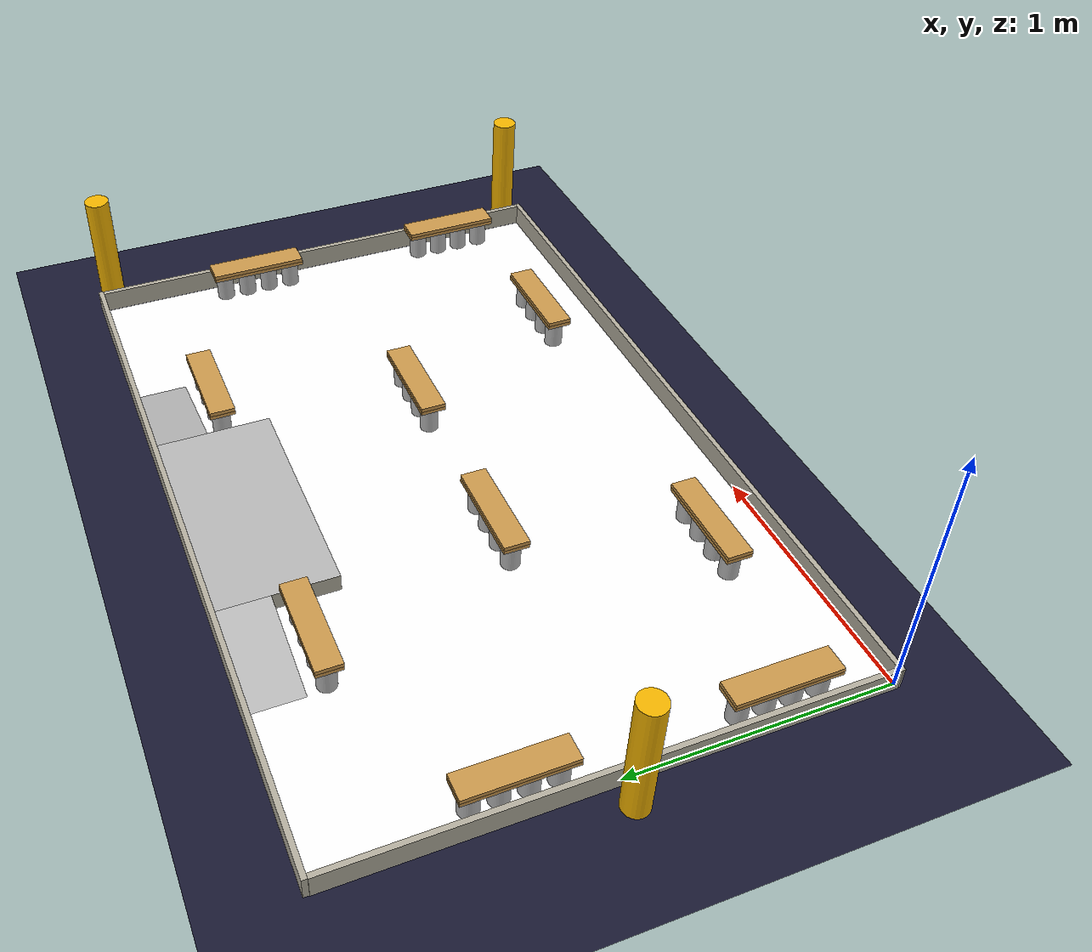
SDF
<?xml version="1.0" ?>
<sdf version="1.6">

  <world name="eurobot_2025">
    <physics name="default_physics" type="ode">
      <max_step_size>0.01</max_step_size>
      <real_time_update_rate>10</real_time_update_rate>
      <real_time_factor>1.0</real_time_factor>
    </physics>

    <scene>
      <ambient>0.4 0.4 0.4 1</ambient>
      <shadows>false</shadows>
    </scene>
    <light type="directional" name="light1">
      <pose>1.5 1 50 0 0 0</pose>
      <diffuse>0.5 0.5 0.5 1</diffuse>
      <specular>1 1 1 0</specular>
      <direction>1 0 0.5</direction>
    </light>
    <light type="directional" name="light2">
      <pose>1.5 1 50 0 0 0</pose>
      <diffuse>0.5 0.5 0.5 1</diffuse>
      <specular>1 1 1 0</specular>
      <direction>1 0 -0.5</direction>
    </light>

    <model name="ground_plane">
      <static>true</static>
      <link name="ground_link">
        <collision name="collision1">
          <geometry>
            <plane>
              <normal>0 0 1</normal>
            </plane>
          </geometry>
        </collision>
        <visual name="visual1">
          <geometry>
            <plane>
              <normal>0 0 1</normal>
              <size>100 100</size>
            </plane>
          </geometry>
          <material>
            <ambient>0.1 0.1 0.1 0</ambient>
            <diffuse>0.1 0.1 0.2 0</diffuse>
            <specular>0 0 0 0</specular>
            <emissive>0 0 0 0</emissive>
          </material>
        </visual>
      </link>
    </model>

    <!--Playground-->
    <include>
      <name>playground</name>
      <uri>model://eurobot_playground_25</uri>
      <pose>1.5 1.0 -0.001 0 0 0</pose>
    </include>

    <!--Stage-->
    <include>
      <name>stage</name>
      <uri>model://eurobot_25/stage</uri>
      <pose>1.5 1.775 0.035 0 0 0</pose>
    </include>

    <!--Ramp Yellow-->
    <include>
      <name>ramp_yellow</name>
      <uri>model://eurobot_25/ramp_yellow</uri>
      <pose>0.85 1.9 0.035 0 0 0</pose>
    </include>

    <!--Ramp Blue-->
    <include>
      <name>ramp_blue</name>
      <uri>model://eurobot_25/ramp_blue</uri>
      <pose>2.15 1.9 0.035 0 0 0</pose>
    </include>

    <!-- Cans front left-->
    <include>
      <name>can11</name>
      <uri>model://eurobot_25/cans_yrg</uri>
      <pose>0.625 0.25 0.055 0 0 0</pose>
    </include>
    <include>
      <name>can12</name>
      <uri>model://eurobot_25/cans_rbb</uri>
      <pose>0.725 0.25 0.055 0 0 0</pose>
    </include>
    <include>
      <name>can13</name>
      <uri>model://eurobot_25/cans_yrg</uri>
      <pose>0.825 0.25 0.055 0 0 0</pose>
    </include>
    <include>
      <name>can14</name>
      <uri>model://eurobot_25/cans_rbb</uri>
      <pose>0.925 0.25 0.055 0 0 0</pose>
    </include>
    <!-- planks front left-->
    <include>
      <name>plank_11</name>
      <uri>model://eurobot_25/plank</uri>
      <pose>0.775 0.25 0.118 0 0 0</pose>
    </include>
    <include>
      <name>plank_12</name>
      <uri>model://eurobot_25/plank</uri>
      <pose>0.775 0.25 0.134 0 0 0</pose>
    </include>

    <!-- Cans left front -->
    <include>
      <name>can21</name>
      <uri>model://eurobot_25/cans_yrg</uri>
      <pose>0.075 0.25 0.055 0 0 0</pose>
    </include>
    <include>
      <name>can22</name>
      <uri>model://eurobot_25/cans_rbb</uri>
      <pose>0.075 0.35 0.055 0 0 0</pose>
    </include>
    <include>
      <name>can23</name>
      <uri>model://eurobot_25/cans_yrg</uri>
      <pose>0.075 0.45 0.055 0 0 0</pose>
    </include>
    <include>
      <name>can24</name>
      <uri>model://eurobot_25/cans_rbb</uri>
      <pose>0.075 0.55 0.055 0 0 0</pose>
    </include>
    <!-- planks left front -->
    <include>
      <name>plank_21</name>
      <uri>model://eurobot_25/plank</uri>
      <pose>0.075 0.4 0.118 0 0 1.571</pose>
    </include>
    <include>
      <name>plank_22</name>
      <uri>model://eurobot_25/plank</uri>
      <pose>0.075 0.4 0.134 0 0 1.571</pose>
    </include>

    <!-- Cans left middle -->
    <include>
      <name>can31</name>
      <uri>model://eurobot_25/cans_yrg</uri>
      <pose>0.075 1.175 0.055 0 0 0</pose>
    </include>
    <include>
      <name>can32</name>
      <uri>model://eurobot_25/cans_rbb</uri>
      <pose>0.075 1.275 0.055 0 0 0</pose>
    </include>
    <include>
      <name>can33</name>
      <uri>model://eurobot_25/cans_yrg</uri>
      <pose>0.075 1.375 0.055 0 0 0</pose>
    </include>
    <include>
      <name>can34</name>
      <uri>model://eurobot_25/cans_rbb</uri>
      <pose>0.075 1.475 0.055 0 0 0</pose>
    </include>
    <!-- planks left middle -->
    <include>
      <name>plank_31</name>
      <uri>model://eurobot_25/plank</uri>
      <pose>0.075 1.325 0.118 0 0 1.571</pose>
    </include>
    <include>
      <name>plank_32</name>
      <uri>model://eurobot_25/plank</uri>
      <pose>0.075 1.325 0.134 0 0 1.571</pose>
    </include>

    <!-- Cans center left -->
    <include>
      <name>can41</name>
      <uri>model://eurobot_25/cans_yrg</uri>
      <pose>0.95 0.95 0.055 0 0 0</pose>
    </include>
    <include>
      <name>can42</name>
      <uri>model://eurobot_25/cans_rbb</uri>
      <pose>1.05 0.95 0.055 0 0 0</pose>
    </include>
    <include>
      <name>can43</name>
      <uri>model://eurobot_25/cans_yrg</uri>
      <pose>1.15 0.95 0.055 0 0 0</pose>
    </include>
    <include>
      <name>can44</name>
      <uri>model://eurobot_25/cans_rbb</uri>
      <pose>1.25 0.95 0.055 0 0 0</pose>
    </include>
    <!-- planks center left -->
    <include>
      <name>plank_41</name>
      <uri>model://eurobot_25/plank</uri>
      <pose>1.1 0.95 0.118 0 0 0</pose>
    </include>
    <include>
      <name>plank_42</name>
      <uri>model://eurobot_25/plank</uri>
      <pose>1.1 0.95 0.134 0 0 0</pose>
    </include>

    <!-- Cans backstage left -->
    <include>
      <name>can51</name>
      <uri>model://eurobot_25/cans_rbb</uri>
      <pose>0.675 1.725 0.055 0 0 0</pose>
    </include>
    <include>
      <name>can52</name>
      <uri>model://eurobot_25/cans_yrg</uri>
      <pose>0.775 1.725 0.055 0 0 0</pose>
    </include>
    <include>
      <name>can53</name>
      <uri>model://eurobot_25/cans_rbb</uri>
      <pose>0.875 1.725 0.055 0 0 0</pose>
    </include>
    <include>
      <name>can54</name>
      <uri>model://eurobot_25/cans_yrg</uri>
      <pose>0.975 1.725 0.055 0 0 0</pose>
    </include>
    <!-- planks backstage left -->
    <include>
      <name>plank_51</name>
      <uri>model://eurobot_25/plank</uri>
      <pose>0.825 1.725 0.118 0 0 0</pose>
    </include>
    <include>
      <name>plank_52</name>
      <uri>model://eurobot_25/plank</uri>
      <pose>0.825 1.725 0.134 0 0 0</pose>
    </include>

    <!-- Cans front right-->
    <include>
      <name>can15</name>
      <uri>model://eurobot_25/cans_rbb</uri>
      <pose>2.075 0.25 0.055 0 0 0</pose>
    </include>
    <include>
      <name>can16</name>
      <uri>model://eurobot_25/cans_yrg</uri>
      <pose>2.175 0.25 0.055 0 0 0</pose>
    </include>
    <include>
      <name>can17</name>
      <uri>model://eurobot_25/cans_yrg</uri>
      <pose>2.275 0.25 0.055 0 0 0</pose>
    </include>
    <include>
      <name>can18</name>
      <uri>model://eurobot_25/cans_rbb</uri>
      <pose>2.375 0.25 0.055 0 0 0</pose>
    </include>
    <!-- planks front right-->
    <include>
      <name>plank_13</name>
      <uri>model://eurobot_25/plank</uri>
      <pose>2.225 0.25 0.118 0 0 0</pose>
    </include>
    <include>
      <name>plank_14</name>
      <uri>model://eurobot_25/plank</uri>
      <pose>2.225 0.25 0.134 0 0 0</pose>
    </include>

    <!-- Cans right front -->
    <include>
      <name>can25</name>
      <uri>model://eurobot_25/cans_yrg</uri>
      <pose>2.925 0.25 0.055 0 0 0</pose>
    </include>
    <include>
      <name>can26</name>
      <uri>model://eurobot_25/cans_yrg</uri>
      <pose>2.925 0.35 0.055 0 0 0</pose>
    </include>
    <include>
      <name>can27</name>
      <uri>model://eurobot_25/cans_rbb</uri>
      <pose>2.925 0.45 0.055 0 0 0</pose>
    </include>
    <include>
      <name>can28</name>
      <uri>model://eurobot_25/cans_rbb</uri>
      <pose>2.925 0.55 0.055 0 0 0</pose>
    </include>
    <!-- planks right front -->
    <include>
      <name>plank_23</name>
      <uri>model://eurobot_25/plank</uri>
      <pose>2.925 0.4 0.118 0 0 1.571</pose>
    </include>
    <include>
      <name>plank_24</name>
      <uri>model://eurobot_25/plank</uri>
      <pose>2.925 0.4 0.134 0 0 1.571</pose>
    </include>

    <!-- Cans right middle -->
    <include>
      <name>can35</name>
      <uri>model://eurobot_25/cans_rbb</uri>
      <pose>2.925 1.175 0.055 0 0 0</pose>
    </include>
    <include>
      <name>can36</name>
      <uri>model://eurobot_25/cans_yrg</uri>
      <pose>2.925 1.275 0.055 0 0 0</pose>
    </include>
    <include>
      <name>can37</name>
      <uri>model://eurobot_25/cans_rbb</uri>
      <pose>2.925 1.375 0.055 0 0 0</pose>
    </include>
    <include>
      <name>can38</name>
      <uri>model://eurobot_25/cans_yrg</uri>
      <pose>2.925 1.475 0.055 0 0 0</pose>
    </include>
    <!-- planks right middle -->
    <include>
      <name>plank_33</name>
      <uri>model://eurobot_25/plank</uri>
      <pose>2.925 1.325 0.118 0 0 1.571</pose>
    </include>
    <include>
      <name>plank_34</name>
      <uri>model://eurobot_25/plank</uri>
      <pose>2.925 1.325 0.134 0 0 1.571</pose>
    </include>

    <!-- Cans center right -->
    <include>
      <name>can45</name>
      <uri>model://eurobot_25/cans_yrg</uri>
      <pose>1.75 0.95 0.055 0 0 0</pose>
    </include>
    <include>
      <name>can46</name>
      <uri>model://eurobot_25/cans_rbb</uri>
      <pose>1.85 0.95 0.055 0 0 0</pose>
    </include>
    <include>
      <name>can47</name>
      <uri>model://eurobot_25/cans_rbb</uri>
      <pose>1.95 0.95 0.055 0 0 0</pose>
    </include>
    <include>
      <name>can48</name>
      <uri>model://eurobot_25/cans_yrg</uri>
      <pose>2.05 0.95 0.055 0 0 0</pose>
    </include>
    <!-- planks center right -->
    <include>
      <name>plank_43</name>
      <uri>model://eurobot_25/plank</uri>
      <pose>1.9 0.95 0.118 0 0 0</pose>
    </include>
    <include>
      <name>plank_44</name>
      <uri>model://eurobot_25/plank</uri>
      <pose>1.9 0.95 0.134 0 0 0</pose>
    </include>

    <!-- Cans backstage right -->
    <include>
      <name>can55</name>
      <uri>model://eurobot_25/cans_yrg</uri>
      <pose>2.025 1.725 0.055 0 0 0</pose>
    </include>
    <include>
      <name>can56</name>
      <uri>model://eurobot_25/cans_rbb</uri>
      <pose>2.125 1.725 0.055 0 0 0</pose>
    </include>
    <include>
      <name>can57</name>
      <uri>model://eurobot_25/cans_yrg</uri>
      <pose>2.225 1.725 0.055 0 0 0</pose>
    </include>
    <include>
      <name>can58</name>
      <uri>model://eurobot_25/cans_rbb</uri>
      <pose>2.325 1.725 0.055 0 0 0</pose>
    </include>
    <!-- planks backstage right -->
    <include>
      <name>plank_53</name>
      <uri>model://eurobot_25/plank</uri>
      <pose>2.175 1.725 0.118 0 0 0</pose>
    </include>
    <include>
      <name>plank_54</name>
      <uri>model://eurobot_25/plank</uri>
      <pose>2.175 1.725 0.134 0 0 0</pose>
    </include>

    <!--Walls-->
    <model name="wall1">
      <static>true</static>
      <pose>1.502 0 0.045 0 0 0</pose>
      <link name="body">
        <collision name="collision1">
          <geometry>
            <box>
              <size>3.04 0.02 0.09</size>
            </box>
          </geometry>
        </collision>
        <visual name="visual1">
          <geometry>
            <box>
              <size>3.04 0.02 0.09</size>
            </box>
          </geometry>
          <material>
            <ambient>0.71 0.69 0.63 1.0</ambient>
            <diffuse>0.71 0.69 0.63 1.0</diffuse>
            <specular>0.1 0.1 0.1 1</specular>
            <emissive>0 0 0 0</emissive>
          </material>
        </visual>
      </link>
    </model>
    <model name="wall2">
      <static>true</static>
      <pose>1.502 2.01 0.045 0 0 0</pose>
      <link name="body">
        <collision name="collision1">
          <geometry>
            <box>
              <size>3.04 0.02 0.09</size>
            </box>
          </geometry>
        </collision>
        <visual name="visual1">
          <geometry>
            <box>
              <size>3.04 0.02 0.09</size>
            </box>
          </geometry>
          <material>
            <ambient>0.71 0.69 0.63 1.0</ambient>
            <diffuse>0.71 0.69 0.63 1.0</diffuse>
            <specular>0.1 0.1 0.1 1</specular>
            <emissive>0 0 0 0</emissive>
          </material>
        </visual>
      </link>
    </model>
    <model name="wall3">
      <static>true</static>
      <pose>3.01 1.0 0.045 0 0 0</pose>
      <link name="body">
        <collision name="collision1">
          <geometry>
            <box>
              <size>0.02 2.0 0.09</size>
            </box>
          </geometry>
        </collision>
        <visual name="visual1">
          <geometry>
            <box>
              <size>0.02 2 0.09</size>
            </box>
          </geometry>
          <material>
            <ambient>0.71 0.69 0.63 1.0</ambient>
            <diffuse>0.71 0.69 0.63 1.0</diffuse>
            <specular>0.1 0.1 0.1 1</specular>
            <emissive>0 0 0 0</emissive>
          </material>
        </visual>
      </link>
    </model>
    <model name="wall4">
      <static>true</static>
      <pose>-0.01 1.0 0.045 0 0 0</pose>
      <link name="body">
        <collision name="collision1">
          <geometry>
            <box>
              <size>0.02 2.0 0.09</size>
            </box>
          </geometry>
        </collision>
        <visual name="visual1">
          <geometry>
            <box>
              <size>0.02 2 0.09</size>
            </box>
          </geometry>
          <material>
            <ambient>0.71 0.69 0.63 1.0</ambient>
            <diffuse>0.71 0.69 0.63 1.0</diffuse>
            <specular>0.1 0.1 0.1 1</specular>
            <emissive>0 0 0 0</emissive>
          </material>
        </visual>
      </link>
    </model>
    <!--Landmarks yellow-->
    <model name="landmark2">
      <pose>-0.094 1.0 0.25 0 0 0</pose>
      <static>true</static>
      <link name="link">
        <collision name="collision">
          <geometry>
            <cylinder>
              <length>0.5</length>
              <radius>0.05</radius>
            </cylinder>
          </geometry>
          <laser_retro>20.0</laser_retro>
        </collision>
        <visual name="visual">
          <geometry>
            <cylinder>
              <length>0.5</length>
              <radius>0.05</radius>
            </cylinder>
          </geometry>
          <material>
            <ambient>0.96 0.71 0.0 1</ambient>
            <diffuse>0.96 0.71 0.0 1</diffuse>
            <specular>0 0 0 0</specular>
            <emissive>0 0 0 0</emissive>
          </material>
        </visual>
      </link>
    </model>

    <model name="landmark4">
      <pose>3.094 0.05 0.25 0 0 0</pose>
      <static>true</static>
      <link name="link">
        <collision name="collision">
          <geometry>
            <cylinder>
              <length>0.5</length>
              <radius>0.05</radius>
            </cylinder>
          </geometry>
          <laser_retro>40.0</laser_retro>
        </collision>
        <visual name="visual">
          <geometry>
            <cylinder>
              <length>0.5</length>
              <radius>0.05</radius>
            </cylinder>
          </geometry>
          <material>
            <ambient>0.96 0.71 0.0 1</ambient>
            <diffuse>0.96 0.71 0.0 1</diffuse>
            <specular>0 0 0 0</specular>
            <emissive>0 0 0 0</emissive>
          </material>
        </visual>
      </link>
    </model>

    <model name="landmark6">
      <pose>3.094 1.95 0.25 0 0 0</pose>
      <static>true</static>
      <link name="link">
        <collision name="collision">
          <geometry>
            <cylinder>
              <length>0.5</length>
              <radius>0.05</radius>
            </cylinder>
          </geometry>
          <laser_retro>60.0</laser_retro>
        </collision>
        <visual name="visual">
          <geometry>
            <cylinder>
              <length>0.5</length>
              <radius>0.05</radius>
            </cylinder>
          </geometry>
          <material>
            <ambient>0.96 0.71 0.0 1</ambient>
            <diffuse>0.96 0.71 0.0 1</diffuse>
            <specular>0 0 0 0</specular>
            <emissive>0 0 0 0</emissive>
          </material>
        </visual>
      </link>
    </model>

    <!--Landmarks purple-->

  </world>
</sdf>

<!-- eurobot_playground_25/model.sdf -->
<sdf version="1.6">
  <model name="Eurobot Playground Model">
    <static>true</static>
  <link name="plane">
      <collision name="plane_collision">
        <geometry>
          <box>
            <size>3 2 0.0001</size>
          </box>
        </geometry>
      </collision>
      <visual name="plane_visual">
        <geometry>
          <box>
            <size>3 2 0.0001</size>
          </box>
        </geometry>
        <material>
          <ambient>1 1 1 1</ambient>
          <diffuse>1 1 1 1</diffuse>
          <specular>0.1 0.1 0.1 1</specular>
          <pbr>
            <metal>
              <albedo_map>materials/textures/vinyle_table_2025_large.png</albedo_map>
              <roughness>1.0</roughness>
              <metalness>0.0</metalness>
            </metal>
          </pbr>
        </material>
      </visual>
    </link>

  </model>
</sdf>

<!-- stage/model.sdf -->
<sdf version="1.6">
  <model name="Eurobot Stage Model">
    <static>true</static>
    <link name="stage">
      <collision name="stage_collision">
        <geometry>
          <box>
            <size>0.9 0.45 0.07</size>
          </box>
        </geometry>
      </collision>
      <visual name="stage_visual">
        <geometry>
          <mesh>
            <uri>model://eurobot_25/stage/meshes/eurobot_2025_stage.dae</uri>
            <scale>1.0 1.0 1.0</scale>
          </mesh>
        </geometry>
      </visual>
    </link>

  </model>
</sdf>

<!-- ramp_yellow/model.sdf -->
<sdf version="1.6">
  <model name="Eurobot Ramp Yellow Model">
    <static>true</static>
    <link name="ramp_yellow">
      <collision name="ramp_yellow_collision">
        <geometry>
          <mesh>
            <uri>model://eurobot_25/ramp_yellow/meshes/eurobot_2025_ramp_yellow.dae</uri>
            <scale>1.0 1.0 1.0</scale>
          </mesh>
        </geometry>
      </collision>
      <visual name="ramp_yellow_visual">
        <geometry>
          <mesh>
            <uri>model://eurobot_25/ramp_yellow/meshes/eurobot_2025_ramp_yellow.dae</uri>
            <scale>1.0 1.0 1.0</scale>
          </mesh>
        </geometry>
      </visual>
    </link>

  </model>
</sdf>

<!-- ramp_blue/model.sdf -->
<sdf version="1.6">
  <model name="Eurobot Ramp Blue Model">
    <static>true</static>
    <link name="ramp_blue">
      <collision name="ramp_blue_collision">
        <geometry>
          <mesh>
            <uri>model://eurobot_25/ramp_blue/meshes/eurobot_2025_ramp_blue.dae</uri>
            <scale>1.0 1.0 1.0</scale>
          </mesh>
        </geometry>
      </collision>
      <visual name="ramp_blue_visual">
        <geometry>
          <mesh>
            <uri>model://eurobot_25/ramp_blue/meshes/eurobot_2025_ramp_blue.dae</uri>
            <scale>1.0 1.0 1.0</scale>
          </mesh>
        </geometry>
      </visual>
    </link>

  </model>
</sdf>

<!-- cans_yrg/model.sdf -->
<sdf version="1.6">
  <model name="Eurobot Cans Yellow Red Green Model">
    <static>false</static>
    <link name="ramp_yellow">
      <collision name="cans_yellow_red_green">
        <geometry>
          <cylinder>
            <length>0.11</length>
            <radius>0.0365</radius>
          </cylinder>
        </geometry>
        <surface>
          <friction>
            <ode>
              <mu>0.5</mu>
              <mu2>0.5</mu2>
            </ode>
          </friction>
        </surface>
        <!-- Spring stiffness -->
        <!-- Damping coefficient -->
      </collision>
      <inertial>
        <inertia>          <!-- Iniertia parameters 10x smaller then the correct values to be more stable in simulation -->
          <ixx>0.000084</ixx>
          <ixy>0</ixy>
          <ixz>0</ixz>
          <iyy>0.000084</iyy>
          <iyz>0</iyz>
          <izz>0.000042</izz>
        </inertia>
        <mass>0.04</mass>
      </inertial>
      <visual name="ramp_yellow_visual">
        <geometry>
          <mesh>
            <uri>model://eurobot_25/cans_yrg/meshes/eurobot_2025_cans_yrg.dae</uri>
            <scale>1.0 1.0 1.0</scale>
          </mesh>
        </geometry>
      </visual>
    </link>

  </model>
</sdf>

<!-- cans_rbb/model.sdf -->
<sdf version="1.6">
  <model name="Eurobot Cans Red Blue Blue Model">
    <static>false</static>
    <link name="cans_red_blue_blue_link">
      <collision name="cans_red_blue_blue_collision">
        <geometry>
          <cylinder>
            <length>0.11</length>
            <radius>0.0365</radius>
          </cylinder>
        </geometry>
        <surface>
          <friction>
            <ode>
              <mu>0.5</mu>
              <mu2>0.5</mu2>
            </ode>
          </friction>
        </surface>
        <!-- Spring stiffness -->
        <!-- Damping coefficient -->
      </collision>
      <inertial>
        <inertia>          <!-- Iniertia parameters 10x smaller then the correct values to be more stable in simulation -->
          <ixx>0.000084</ixx>
          <ixy>0</ixy>
          <ixz>0</ixz>
          <iyy>0.000084</iyy>
          <iyz>0</iyz>
          <izz>0.000042</izz>
        </inertia>
        <mass>0.04</mass>
      </inertial>
      <visual name="cans_red_blue_blue_visual">
        <geometry>
          <mesh>
            <uri>model://eurobot_25/cans_rbb/meshes/eurobot_2025_cans_rbb.dae</uri>
            <scale>1.0 1.0 1.0</scale>
          </mesh>
        </geometry>
      </visual>
    </link>

  </model>
</sdf>

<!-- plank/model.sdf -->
<sdf version="1.6">
  <model name="Eurobot Plank Model ">
    <static>false</static>
    <link name="plank">
      <collision name="plank_collision">
        <geometry>
          <box>
            <size>0.4 0.1 0.015</size>
          </box>
        </geometry>
        <surface>
          <friction>
            <ode>
              <mu>0.3</mu>
              <mu2>0.3</mu2>
            </ode>
          </friction>
           <!-- Spring stiffness -->
              <!-- Damping coefficient -->
        </surface>
      </collision>
      <!-- Inertial for beech wood (Buche) -->
      <inertial>
        <inertia>
          <ixx>0.00601</ixx>
          <ixy>0</ixy>
          <ixz>0</ixz>
          <iyy>0.00638</iyy>
          <iyz>0</iyz>
          <izz>0.00038</izz>
        </inertia>
        <mass>0.45</mass>
      </inertial>
      <visual name="plank_visual">
        <geometry>
          <box>
            <size>0.4 0.1 0.015</size>
          </box>
        </geometry>
        <material>
          <ambient>0.80 0.60 0.30 1.0</ambient>
          <diffuse>0.80 0.60 0.30 1.0</diffuse>
          <specular>0.1 0.1 0.1 1</specular>
          <emissive>0 0 0 0</emissive>
        </material>
      </visual>
    </link>
  </model>
</sdf>
